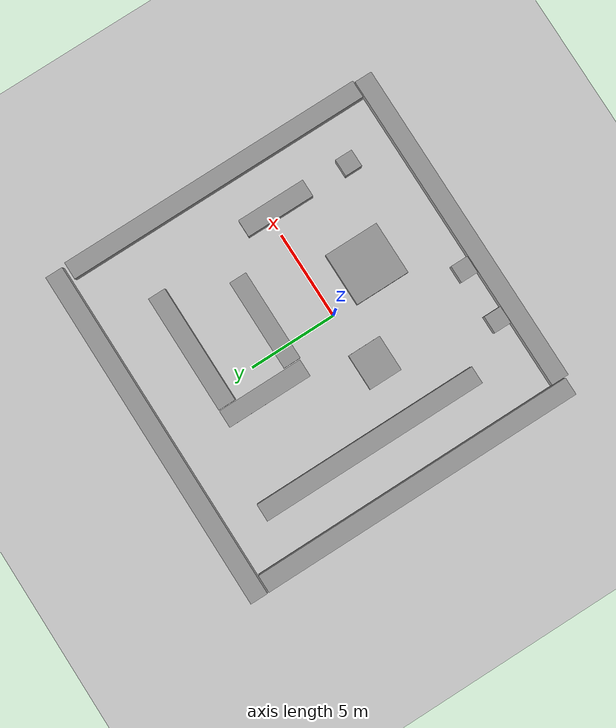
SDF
<?xml version="1.0"?>
<sdf version="1.4">
    <world name="myworld">
        <include>
            <uri>model://sun</uri>
        </include>

        <include>
            <uri>model://ground_plane</uri>
        </include>

        <model name='map2'>
            <link name='link_0'>
                <pose frame=''>-0.25053 10.9673 0 0 -0 0</pose>
                <inertial>
                    <mass>19.7589</mass>
                    <inertia>
                        <ixx>3.29316</ixx>
                        <ixy>0</ixy>
                        <ixz>0</ixz>
                        <iyy>644.497</iyy>
                        <iyz>0</iyz>
                        <izz>644.497</izz>
                    </inertia>
                    <pose frame=''>0 0 0 0 -0 0</pose>
                </inertial>
                <visual name='visual'>
                    <pose frame=''>0 0 0 0 -0 0</pose>
                    <geometry>
                        <box>
                            <size>19.7589 1 1</size>
                        </box>
                    </geometry>
                    <material>
                        <lighting>1</lighting>
                        <script>
                            <uri>file://media/materials/scripts/gazebo.material</uri>
                            <name>Gazebo/Grey</name>
                        </script>
                        <ambient>0.3 0.3 0.3 1</ambient>
                        <diffuse>0.7 0.7 0.7 1</diffuse>
                        <specular>0.01 0.01 0.01 1</specular>
                        <emissive>0 0 0 1</emissive>
                    </material>
                    <cast_shadows>1</cast_shadows>
                    <transparency>0</transparency>
                </visual>
                <collision name='collision'>
                    <laser_retro>0</laser_retro>
                    <max_contacts>10</max_contacts>
                    <pose frame=''>0 0 0 0 -0 0</pose>
                    <geometry>
                        <box>
                            <size>19.7589 1 1</size>
                        </box>
                    </geometry>
                    <surface>
                        <friction>
                            <ode>
                                <mu>1</mu>
                                <mu2>1</mu2>
                                <fdir1>0 0 0</fdir1>
                                <slip1>0</slip1>
                                <slip2>0</slip2>
                            </ode>
                            <torsional>
                                <coefficient>1</coefficient>
                                <patch_radius>0</patch_radius>
                                <surface_radius>0</surface_radius>
                                <use_patch_radius>1</use_patch_radius>
                                <ode>
                                    <slip>0</slip>
                                </ode>
                            </torsional>
                        </friction>
                        <bounce>
                            <restitution_coefficient>0</restitution_coefficient>
                            <threshold>1e+06</threshold>
                        </bounce>
                        <contact>
                            <collide_without_contact>0</collide_without_contact>
                            <collide_without_contact_bitmask>1</collide_without_contact_bitmask>
                            <collide_bitmask>1</collide_bitmask>
                            <ode>
                                <soft_cfm>0</soft_cfm>
                                <soft_erp>0.2</soft_erp>
                                <kp>1e+13</kp>
                                <kd>1</kd>
                                <max_vel>0.01</max_vel>
                                <min_depth>0</min_depth>
                            </ode>
                            <bullet>
                                <split_impulse>1</split_impulse>
                                <split_impulse_penetration_threshold>-0.01</split_impulse_penetration_threshold>
                                <soft_cfm>0</soft_cfm>
                                <soft_erp>0.2</soft_erp>
                                <kp>1e+13</kp>
                                <kd>1</kd>
                            </bullet>
                        </contact>
                    </surface>
                </collision>
            </link>
            <link name='link_1'>
                <pose frame=''>-9.62489 1.044 0 0 -0 0</pose>
                <inertial>
                    <mass>18.6747</mass>
                    <inertia>
                        <ixx>544.28</ixx>
                        <ixy>0</ixy>
                        <ixz>0</ixz>
                        <iyy>3.11245</iyy>
                        <iyz>0</iyz>
                        <izz>544.28</izz>
                    </inertia>
                    <pose frame=''>0 0 0 0 -0 0</pose>
                </inertial>
                <visual name='visual'>
                    <pose frame=''>0 0 0 0 -0 0</pose>
                    <geometry>
                        <box>
                            <size>1 18.6747 1</size>
                        </box>
                    </geometry>
                    <material>
                        <lighting>1</lighting>
                        <script>
                            <uri>file://media/materials/scripts/gazebo.material</uri>
                            <name>Gazebo/Grey</name>
                        </script>
                        <ambient>0.3 0.3 0.3 1</ambient>
                        <diffuse>0.7 0.7 0.7 1</diffuse>
                        <specular>0.01 0.01 0.01 1</specular>
                        <emissive>0 0 0 1</emissive>
                    </material>
                    <cast_shadows>1</cast_shadows>
                    <transparency>0</transparency>
                </visual>
                <collision name='collision'>
                    <laser_retro>0</laser_retro>
                    <max_contacts>10</max_contacts>
                    <pose frame=''>0 0 0 0 -0 0</pose>
                    <geometry>
                        <box>
                            <size>1 18.6747 1</size>
                        </box>
                    </geometry>
                    <surface>
                        <friction>
                            <ode>
                                <mu>1</mu>
                                <mu2>1</mu2>
                                <fdir1>0 0 0</fdir1>
                                <slip1>0</slip1>
                                <slip2>0</slip2>
                            </ode>
                            <torsional>
                                <coefficient>1</coefficient>
                                <patch_radius>0</patch_radius>
                                <surface_radius>0</surface_radius>
                                <use_patch_radius>1</use_patch_radius>
                                <ode>
                                    <slip>0</slip>
                                </ode>
                            </torsional>
                        </friction>
                        <bounce>
                            <restitution_coefficient>0</restitution_coefficient>
                            <threshold>1e+06</threshold>
                        </bounce>
                        <contact>
                            <collide_without_contact>0</collide_without_contact>
                            <collide_without_contact_bitmask>1</collide_without_contact_bitmask>
                            <collide_bitmask>1</collide_bitmask>
                            <ode>
                                <soft_cfm>0</soft_cfm>
                                <soft_erp>0.2</soft_erp>
                                <kp>1e+13</kp>
                                <kd>1</kd>
                                <max_vel>0.01</max_vel>
                                <min_depth>0</min_depth>
                            </ode>
                            <bullet>
                                <split_impulse>1</split_impulse>
                                <split_impulse_penetration_threshold>-0.01</split_impulse_penetration_threshold>
                                <soft_cfm>0</soft_cfm>
                                <soft_erp>0.2</soft_erp>
                                <kp>1e+13</kp>
                                <kd>1</kd>
                            </bullet>
                        </contact>
                    </surface>
                </collision>
            </link>
            <link name='link_10'>
                <pose frame=''>-3.20852 -0.471758 0 0 -0 0</pose>
                <inertial>
                    <mass>3.91723</mass>
                    <inertia>
                        <ixx>1.50745</ixx>
                        <ixy>0</ixy>
                        <ixz>0</ixz>
                        <iyy>1.71096</iyy>
                        <iyz>0</iyz>
                        <izz>2.56554</izz>
                    </inertia>
                    <pose frame=''>0 0 0 0 -0 0</pose>
                </inertial>
                <visual name='visual'>
                    <pose frame=''>0 0 0 0 -0 0</pose>
                    <geometry>
                        <box>
                            <size>2.05944 1.90208 1</size>
                        </box>
                    </geometry>
                    <material>
                        <lighting>1</lighting>
                        <script>
                            <uri>file://media/materials/scripts/gazebo.material</uri>
                            <name>Gazebo/Grey</name>
                        </script>
                        <ambient>0.3 0.3 0.3 1</ambient>
                        <diffuse>0.7 0.7 0.7 1</diffuse>
                        <specular>0.01 0.01 0.01 1</specular>
                        <emissive>0 0 0 1</emissive>
                    </material>
                    <cast_shadows>1</cast_shadows>
                    <transparency>0</transparency>
                </visual>
                <collision name='collision'>
                    <laser_retro>0</laser_retro>
                    <max_contacts>10</max_contacts>
                    <pose frame=''>0 0 0 0 -0 0</pose>
                    <geometry>
                        <box>
                            <size>2.05944 1.90208 1</size>
                        </box>
                    </geometry>
                    <surface>
                        <friction>
                            <ode>
                                <mu>1</mu>
                                <mu2>1</mu2>
                                <fdir1>0 0 0</fdir1>
                                <slip1>0</slip1>
                                <slip2>0</slip2>
                            </ode>
                            <torsional>
                                <coefficient>1</coefficient>
                                <patch_radius>0</patch_radius>
                                <surface_radius>0</surface_radius>
                                <use_patch_radius>1</use_patch_radius>
                                <ode>
                                    <slip>0</slip>
                                </ode>
                            </torsional>
                        </friction>
                        <bounce>
                            <restitution_coefficient>0</restitution_coefficient>
                            <threshold>1e+06</threshold>
                        </bounce>
                        <contact>
                            <collide_without_contact>0</collide_without_contact>
                            <collide_without_contact_bitmask>1</collide_without_contact_bitmask>
                            <collide_bitmask>1</collide_bitmask>
                            <ode>
                                <soft_cfm>0</soft_cfm>
                                <soft_erp>0.2</soft_erp>
                                <kp>1e+13</kp>
                                <kd>1</kd>
                                <max_vel>0.01</max_vel>
                                <min_depth>0</min_depth>
                            </ode>
                            <bullet>
                                <split_impulse>1</split_impulse>
                                <split_impulse_penetration_threshold>-0.01</split_impulse_penetration_threshold>
                                <soft_cfm>0</soft_cfm>
                                <soft_erp>0.2</soft_erp>
                                <kp>1e+13</kp>
                                <kd>1</kd>
                            </bullet>
                        </contact>
                    </surface>
                </collision>
            </link>
            <link name='link_11'>
                <pose frame=''>6.24399 -4.9326 0 0 -0 0</pose>
                <inertial>
                    <mass>1</mass>
                    <inertia>
                        <ixx>0.166667</ixx>
                        <ixy>0</ixy>
                        <ixz>0</ixz>
                        <iyy>0.166667</iyy>
                        <iyz>0</iyz>
                        <izz>0.166667</izz>
                    </inertia>
                </inertial>
                <visual name='visual'>
                    <pose frame=''>0 0 0 0 -0 0</pose>
                    <geometry>
                        <box>
                            <size>1 1 1</size>
                        </box>
                    </geometry>
                    <material>
                        <lighting>1</lighting>
                        <script>
                            <uri>file://media/materials/scripts/gazebo.material</uri>
                            <name>Gazebo/Grey</name>
                        </script>
                        <ambient>0.3 0.3 0.3 1</ambient>
                        <diffuse>0.7 0.7 0.7 1</diffuse>
                        <specular>0.01 0.01 0.01 1</specular>
                        <emissive>0 0 0 1</emissive>
                    </material>
                    <cast_shadows>1</cast_shadows>
                    <transparency>0</transparency>
                </visual>
                <collision name='collision'>
                    <laser_retro>0</laser_retro>
                    <max_contacts>10</max_contacts>
                    <pose frame=''>0 0 0 0 -0 0</pose>
                    <geometry>
                        <box>
                            <size>1 1 1</size>
                        </box>
                    </geometry>
                    <surface>
                        <friction>
                            <ode>
                                <mu>1</mu>
                                <mu2>1</mu2>
                                <fdir1>0 0 0</fdir1>
                                <slip1>0</slip1>
                                <slip2>0</slip2>
                            </ode>
                            <torsional>
                                <coefficient>1</coefficient>
                                <patch_radius>0</patch_radius>
                                <surface_radius>0</surface_radius>
                                <use_patch_radius>1</use_patch_radius>
                                <ode>
                                    <slip>0</slip>
                                </ode>
                            </torsional>
                        </friction>
                        <bounce>
                            <restitution_coefficient>0</restitution_coefficient>
                            <threshold>1e+06</threshold>
                        </bounce>
                        <contact>
                            <collide_without_contact>0</collide_without_contact>
                            <collide_without_contact_bitmask>1</collide_without_contact_bitmask>
                            <collide_bitmask>1</collide_bitmask>
                            <ode>
                                <soft_cfm>0</soft_cfm>
                                <soft_erp>0.2</soft_erp>
                                <kp>1e+13</kp>
                                <kd>1</kd>
                                <max_vel>0.01</max_vel>
                                <min_depth>0</min_depth>
                            </ode>
                            <bullet>
                                <split_impulse>1</split_impulse>
                                <split_impulse_penetration_threshold>-0.01</split_impulse_penetration_threshold>
                                <soft_cfm>0</soft_cfm>
                                <soft_erp>0.2</soft_erp>
                                <kp>1e+13</kp>
                                <kd>1</kd>
                            </bullet>
                        </contact>
                    </surface>
                </collision>
            </link>
            <link name='link_12'>
                <pose frame=''>-4.74803 -6.99206 0 0 -0 0</pose>
                <inertial>
                    <mass>1</mass>
                    <inertia>
                        <ixx>0.166667</ixx>
                        <ixy>0</ixy>
                        <ixz>0</ixz>
                        <iyy>0.166667</iyy>
                        <iyz>0</iyz>
                        <izz>0.166667</izz>
                    </inertia>
                </inertial>
                <visual name='visual'>
                    <pose frame=''>0 0 0 0 -0 0</pose>
                    <geometry>
                        <box>
                            <size>1 1 1</size>
                        </box>
                    </geometry>
                    <material>
                        <lighting>1</lighting>
                        <script>
                            <uri>file://media/materials/scripts/gazebo.material</uri>
                            <name>Gazebo/Grey</name>
                        </script>
                        <ambient>0.3 0.3 0.3 1</ambient>
                        <diffuse>0.7 0.7 0.7 1</diffuse>
                        <specular>0.01 0.01 0.01 1</specular>
                        <emissive>0 0 0 1</emissive>
                    </material>
                    <cast_shadows>1</cast_shadows>
                    <transparency>0</transparency>
                </visual>
                <collision name='collision'>
                    <laser_retro>0</laser_retro>
                    <max_contacts>10</max_contacts>
                    <pose frame=''>0 0 0 0 -0 0</pose>
                    <geometry>
                        <box>
                            <size>1 1 1</size>
                        </box>
                    </geometry>
                    <surface>
                        <friction>
                            <ode>
                                <mu>1</mu>
                                <mu2>1</mu2>
                                <fdir1>0 0 0</fdir1>
                                <slip1>0</slip1>
                                <slip2>0</slip2>
                            </ode>
                            <torsional>
                                <coefficient>1</coefficient>
                                <patch_radius>0</patch_radius>
                                <surface_radius>0</surface_radius>
                                <use_patch_radius>1</use_patch_radius>
                                <ode>
                                    <slip>0</slip>
                                </ode>
                            </torsional>
                        </friction>
                        <bounce>
                            <restitution_coefficient>0</restitution_coefficient>
                            <threshold>1e+06</threshold>
                        </bounce>
                        <contact>
                            <collide_without_contact>0</collide_without_contact>
                            <collide_without_contact_bitmask>1</collide_without_contact_bitmask>
                            <collide_bitmask>1</collide_bitmask>
                            <ode>
                                <soft_cfm>0</soft_cfm>
                                <soft_erp>0.2</soft_erp>
                                <kp>1e+13</kp>
                                <kd>1</kd>
                                <max_vel>0.01</max_vel>
                                <min_depth>0</min_depth>
                            </ode>
                            <bullet>
                                <split_impulse>1</split_impulse>
                                <split_impulse_penetration_threshold>-0.01</split_impulse_penetration_threshold>
                                <soft_cfm>0</soft_cfm>
                                <soft_erp>0.2</soft_erp>
                                <kp>1e+13</kp>
                                <kd>1</kd>
                            </bullet>
                        </contact>
                    </surface>
                </collision>
            </link>
            <link name='link_13'>
                <pose frame=''>-1.63961 -6.96889 0 0 -0 0</pose>
                <inertial>
                    <mass>1</mass>
                    <inertia>
                        <ixx>0.166667</ixx>
                        <ixy>0</ixy>
                        <ixz>0</ixz>
                        <iyy>0.166667</iyy>
                        <iyz>0</iyz>
                        <izz>0.166667</izz>
                    </inertia>
                </inertial>
                <visual name='visual'>
                    <pose frame=''>0 0 0 0 -0 0</pose>
                    <geometry>
                        <box>
                            <size>1 1 1</size>
                        </box>
                    </geometry>
                    <material>
                        <lighting>1</lighting>
                        <script>
                            <uri>file://media/materials/scripts/gazebo.material</uri>
                            <name>Gazebo/Grey</name>
                        </script>
                        <ambient>0.3 0.3 0.3 1</ambient>
                        <diffuse>0.7 0.7 0.7 1</diffuse>
                        <specular>0.01 0.01 0.01 1</specular>
                        <emissive>0 0 0 1</emissive>
                    </material>
                    <cast_shadows>1</cast_shadows>
                    <transparency>0</transparency>
                </visual>
                <collision name='collision'>
                    <laser_retro>0</laser_retro>
                    <max_contacts>10</max_contacts>
                    <pose frame=''>0 0 0 0 -0 0</pose>
                    <geometry>
                        <box>
                            <size>1 1 1</size>
                        </box>
                    </geometry>
                    <surface>
                        <friction>
                            <ode>
                                <mu>1</mu>
                                <mu2>1</mu2>
                                <fdir1>0 0 0</fdir1>
                                <slip1>0</slip1>
                                <slip2>0</slip2>
                            </ode>
                            <torsional>
                                <coefficient>1</coefficient>
                                <patch_radius>0</patch_radius>
                                <surface_radius>0</surface_radius>
                                <use_patch_radius>1</use_patch_radius>
                                <ode>
                                    <slip>0</slip>
                                </ode>
                            </torsional>
                        </friction>
                        <bounce>
                            <restitution_coefficient>0</restitution_coefficient>
                            <threshold>1e+06</threshold>
                        </bounce>
                        <contact>
                            <collide_without_contact>0</collide_without_contact>
                            <collide_without_contact_bitmask>1</collide_without_contact_bitmask>
                            <collide_bitmask>1</collide_bitmask>
                            <ode>
                                <soft_cfm>0</soft_cfm>
                                <soft_erp>0.2</soft_erp>
                                <kp>1e+13</kp>
                                <kd>1</kd>
                                <max_vel>0.01</max_vel>
                                <min_depth>0</min_depth>
                            </ode>
                            <bullet>
                                <split_impulse>1</split_impulse>
                                <split_impulse_penetration_threshold>-0.01</split_impulse_penetration_threshold>
                                <soft_cfm>0</soft_cfm>
                                <soft_erp>0.2</soft_erp>
                                <kp>1e+13</kp>
                                <kd>1</kd>
                            </bullet>
                        </contact>
                    </surface>
                </collision>
            </link>
            <link name='link_2'>
                <pose frame=''>0.290833 -8.01011 0 0 -0 0</pose>
                <inertial>
                    <mass>18.7193</mass>
                    <inertia>
                        <ixx>3.11989</ixx>
                        <ixy>0</ixy>
                        <ixz>0</ixz>
                        <iyy>548.186</iyy>
                        <iyz>0</iyz>
                        <izz>548.186</izz>
                    </inertia>
                    <pose frame=''>0 0 0 0 -0 0</pose>
                </inertial>
                <visual name='visual'>
                    <pose frame=''>0 0 0 0 -0 0</pose>
                    <geometry>
                        <box>
                            <size>18.7193 1 1</size>
                        </box>
                    </geometry>
                    <material>
                        <lighting>1</lighting>
                        <script>
                            <uri>file://media/materials/scripts/gazebo.material</uri>
                            <name>Gazebo/Grey</name>
                        </script>
                        <ambient>0.3 0.3 0.3 1</ambient>
                        <diffuse>0.7 0.7 0.7 1</diffuse>
                        <specular>0.01 0.01 0.01 1</specular>
                        <emissive>0 0 0 1</emissive>
                    </material>
                    <cast_shadows>1</cast_shadows>
                    <transparency>0</transparency>
                </visual>
                <collision name='collision'>
                    <laser_retro>0</laser_retro>
                    <max_contacts>10</max_contacts>
                    <pose frame=''>0 0 0 0 -0 0</pose>
                    <geometry>
                        <box>
                            <size>18.7193 1 1</size>
                        </box>
                    </geometry>
                    <surface>
                        <friction>
                            <ode>
                                <mu>1</mu>
                                <mu2>1</mu2>
                                <fdir1>0 0 0</fdir1>
                                <slip1>0</slip1>
                                <slip2>0</slip2>
                            </ode>
                            <torsional>
                                <coefficient>1</coefficient>
                                <patch_radius>0</patch_radius>
                                <surface_radius>0</surface_radius>
                                <use_patch_radius>1</use_patch_radius>
                                <ode>
                                    <slip>0</slip>
                                </ode>
                            </torsional>
                        </friction>
                        <bounce>
                            <restitution_coefficient>0</restitution_coefficient>
                            <threshold>1e+06</threshold>
                        </bounce>
                        <contact>
                            <collide_without_contact>0</collide_without_contact>
                            <collide_without_contact_bitmask>1</collide_without_contact_bitmask>
                            <collide_bitmask>1</collide_bitmask>
                            <ode>
                                <soft_cfm>0</soft_cfm>
                                <soft_erp>0.2</soft_erp>
                                <kp>1e+13</kp>
                                <kd>1</kd>
                                <max_vel>0.01</max_vel>
                                <min_depth>0</min_depth>
                            </ode>
                            <bullet>
                                <split_impulse>1</split_impulse>
                                <split_impulse_penetration_threshold>-0.01</split_impulse_penetration_threshold>
                                <soft_cfm>0</soft_cfm>
                                <soft_erp>0.2</soft_erp>
                                <kp>1e+13</kp>
                                <kd>1</kd>
                            </bullet>
                        </contact>
                    </surface>
                </collision>
            </link>
            <link name='link_3'>
                <pose frame=''>9.26376 1.39705 0 0 -0 0</pose>
                <inertial>
                    <mass>17.6849</mass>
                    <inertia>
                        <ixx>462.399</ixx>
                        <ixy>0</ixy>
                        <ixz>0</ixz>
                        <iyy>2.9475</iyy>
                        <iyz>0</iyz>
                        <izz>462.399</izz>
                    </inertia>
                    <pose frame=''>0 0 0 0 -0 0</pose>
                </inertial>
                <visual name='visual'>
                    <pose frame=''>0 0 0 0 -0 0</pose>
                    <geometry>
                        <box>
                            <size>1 17.6849 1</size>
                        </box>
                    </geometry>
                    <material>
                        <lighting>1</lighting>
                        <script>
                            <uri>file://media/materials/scripts/gazebo.material</uri>
                            <name>Gazebo/Grey</name>
                        </script>
                        <ambient>0.3 0.3 0.3 1</ambient>
                        <diffuse>0.7 0.7 0.7 1</diffuse>
                        <specular>0.01 0.01 0.01 1</specular>
                        <emissive>0 0 0 1</emissive>
                    </material>
                    <cast_shadows>1</cast_shadows>
                    <transparency>0</transparency>
                </visual>
                <collision name='collision'>
                    <laser_retro>0</laser_retro>
                    <max_contacts>10</max_contacts>
                    <pose frame=''>0 0 0 0 -0 0</pose>
                    <geometry>
                        <box>
                            <size>1 17.6849 1</size>
                        </box>
                    </geometry>
                    <surface>
                        <friction>
                            <ode>
                                <mu>1</mu>
                                <mu2>1</mu2>
                                <fdir1>0 0 0</fdir1>
                                <slip1>0</slip1>
                                <slip2>0</slip2>
                            </ode>
                            <torsional>
                                <coefficient>1</coefficient>
                                <patch_radius>0</patch_radius>
                                <surface_radius>0</surface_radius>
                                <use_patch_radius>1</use_patch_radius>
                                <ode>
                                    <slip>0</slip>
                                </ode>
                            </torsional>
                        </friction>
                        <bounce>
                            <restitution_coefficient>0</restitution_coefficient>
                            <threshold>1e+06</threshold>
                        </bounce>
                        <contact>
                            <collide_without_contact>0</collide_without_contact>
                            <collide_without_contact_bitmask>1</collide_without_contact_bitmask>
                            <collide_bitmask>1</collide_bitmask>
                            <ode>
                                <soft_cfm>0</soft_cfm>
                                <soft_erp>0.2</soft_erp>
                                <kp>1e+13</kp>
                                <kd>1</kd>
                                <max_vel>0.01</max_vel>
                                <min_depth>0</min_depth>
                            </ode>
                            <bullet>
                                <split_impulse>1</split_impulse>
                                <split_impulse_penetration_threshold>-0.01</split_impulse_penetration_threshold>
                                <soft_cfm>0</soft_cfm>
                                <soft_erp>0.2</soft_erp>
                                <kp>1e+13</kp>
                                <kd>1</kd>
                            </bullet>
                        </contact>
                    </surface>
                </collision>
            </link>
            <link name='link_4'>
                <pose frame=''>-6.55511 1.97906 0 0 -0 0</pose>
                <inertial>
                    <mass>13.0814</mass>
                    <inertia>
                        <ixx>187.634</ixx>
                        <ixy>0</ixy>
                        <ixz>0</ixz>
                        <iyy>2.18024</iyy>
                        <iyz>0</iyz>
                        <izz>187.634</izz>
                    </inertia>
                    <pose frame=''>0 0 0 0 -0 0</pose>
                </inertial>
                <visual name='visual'>
                    <pose frame=''>0 0 0 0 -0 0</pose>
                    <geometry>
                        <box>
                            <size>1 13.0814 1</size>
                        </box>
                    </geometry>
                    <material>
                        <lighting>1</lighting>
                        <script>
                            <uri>file://media/materials/scripts/gazebo.material</uri>
                            <name>Gazebo/Grey</name>
                        </script>
                        <ambient>0.3 0.3 0.3 1</ambient>
                        <diffuse>0.7 0.7 0.7 1</diffuse>
                        <specular>0.01 0.01 0.01 1</specular>
                        <emissive>0 0 0 1</emissive>
                    </material>
                    <cast_shadows>1</cast_shadows>
                    <transparency>0</transparency>
                </visual>
                <collision name='collision'>
                    <laser_retro>0</laser_retro>
                    <max_contacts>10</max_contacts>
                    <pose frame=''>0 0 0 0 -0 0</pose>
                    <geometry>
                        <box>
                            <size>1 13.0814 1</size>
                        </box>
                    </geometry>
                    <surface>
                        <friction>
                            <ode>
                                <mu>1</mu>
                                <mu2>1</mu2>
                                <fdir1>0 0 0</fdir1>
                                <slip1>0</slip1>
                                <slip2>0</slip2>
                            </ode>
                            <torsional>
                                <coefficient>1</coefficient>
                                <patch_radius>0</patch_radius>
                                <surface_radius>0</surface_radius>
                                <use_patch_radius>1</use_patch_radius>
                                <ode>
                                    <slip>0</slip>
                                </ode>
                            </torsional>
                        </friction>
                        <bounce>
                            <restitution_coefficient>0</restitution_coefficient>
                            <threshold>1e+06</threshold>
                        </bounce>
                        <contact>
                            <collide_without_contact>0</collide_without_contact>
                            <collide_without_contact_bitmask>1</collide_without_contact_bitmask>
                            <collide_bitmask>1</collide_bitmask>
                            <ode>
                                <soft_cfm>0</soft_cfm>
                                <soft_erp>0.2</soft_erp>
                                <kp>1e+13</kp>
                                <kd>1</kd>
                                <max_vel>0.01</max_vel>
                                <min_depth>0</min_depth>
                            </ode>
                            <bullet>
                                <split_impulse>1</split_impulse>
                                <split_impulse_penetration_threshold>-0.01</split_impulse_penetration_threshold>
                                <soft_cfm>0</soft_cfm>
                                <soft_erp>0.2</soft_erp>
                                <kp>1e+13</kp>
                                <kd>1</kd>
                            </bullet>
                        </contact>
                    </surface>
                </collision>
            </link>
            <link name='link_5'>
                <pose frame=''>1.3137 -2.8846 0 0 -0 0</pose>
                <inertial>
                    <mass>9.48212</mass>
                    <inertia>
                        <ixx>8.48294</ixx>
                        <ixy>0</ixy>
                        <ixz>0</ixz>
                        <iyy>8.08776</iyy>
                        <iyz>0</iyz>
                        <izz>14.9903</izz>
                    </inertia>
                    <pose frame=''>0 0 0 0 -0 0</pose>
                </inertial>
                <visual name='visual'>
                    <pose frame=''>0 0 0 0 -0 0</pose>
                    <geometry>
                        <box>
                            <size>3.03896 3.12016 1</size>
                        </box>
                    </geometry>
                    <material>
                        <lighting>1</lighting>
                        <script>
                            <uri>file://media/materials/scripts/gazebo.material</uri>
                            <name>Gazebo/Grey</name>
                        </script>
                        <ambient>0.3 0.3 0.3 1</ambient>
                        <diffuse>0.7 0.7 0.7 1</diffuse>
                        <specular>0.01 0.01 0.01 1</specular>
                        <emissive>0 0 0 1</emissive>
                    </material>
                    <cast_shadows>1</cast_shadows>
                    <transparency>0</transparency>
                </visual>
                <collision name='collision'>
                    <laser_retro>0</laser_retro>
                    <max_contacts>10</max_contacts>
                    <pose frame=''>0 0 0 0 -0 0</pose>
                    <geometry>
                        <box>
                            <size>3.03896 3.12016 1</size>
                        </box>
                    </geometry>
                    <surface>
                        <friction>
                            <ode>
                                <mu>1</mu>
                                <mu2>1</mu2>
                                <fdir1>0 0 0</fdir1>
                                <slip1>0</slip1>
                                <slip2>0</slip2>
                            </ode>
                            <torsional>
                                <coefficient>1</coefficient>
                                <patch_radius>0</patch_radius>
                                <surface_radius>0</surface_radius>
                                <use_patch_radius>1</use_patch_radius>
                                <ode>
                                    <slip>0</slip>
                                </ode>
                            </torsional>
                        </friction>
                        <bounce>
                            <restitution_coefficient>0</restitution_coefficient>
                            <threshold>1e+06</threshold>
                        </bounce>
                        <contact>
                            <collide_without_contact>0</collide_without_contact>
                            <collide_without_contact_bitmask>1</collide_without_contact_bitmask>
                            <collide_bitmask>1</collide_bitmask>
                            <ode>
                                <soft_cfm>0</soft_cfm>
                                <soft_erp>0.2</soft_erp>
                                <kp>1e+13</kp>
                                <kd>1</kd>
                                <max_vel>0.01</max_vel>
                                <min_depth>0</min_depth>
                            </ode>
                            <bullet>
                                <split_impulse>1</split_impulse>
                                <split_impulse_penetration_threshold>-0.01</split_impulse_penetration_threshold>
                                <soft_cfm>0</soft_cfm>
                                <soft_erp>0.2</soft_erp>
                                <kp>1e+13</kp>
                                <kd>1</kd>
                            </bullet>
                        </contact>
                    </surface>
                </collision>
            </link>
            <link name='link_6'>
                <pose frame=''>2.44812 7.08908 0 0 -0 0</pose>
                <inertial>
                    <mass>6.79261</mass>
                    <inertia>
                        <ixx>1.1321</ixx>
                        <ixy>0</ixy>
                        <ixz>0</ixz>
                        <iyy>26.6835</iyy>
                        <iyz>0</iyz>
                        <izz>26.6835</izz>
                    </inertia>
                    <pose frame=''>0 0 0 0 -0 0</pose>
                </inertial>
                <visual name='visual'>
                    <pose frame=''>0 0 0 0 -0 0</pose>
                    <geometry>
                        <box>
                            <size>6.79262 1 1</size>
                        </box>
                    </geometry>
                    <material>
                        <lighting>1</lighting>
                        <script>
                            <uri>file://media/materials/scripts/gazebo.material</uri>
                            <name>Gazebo/Grey</name>
                        </script>
                        <ambient>0.3 0.3 0.3 1</ambient>
                        <diffuse>0.7 0.7 0.7 1</diffuse>
                        <specular>0.01 0.01 0.01 1</specular>
                        <emissive>0 0 0 1</emissive>
                    </material>
                    <cast_shadows>1</cast_shadows>
                    <transparency>0</transparency>
                </visual>
                <collision name='collision'>
                    <laser_retro>0</laser_retro>
                    <max_contacts>10</max_contacts>
                    <pose frame=''>0 0 0 0 -0 0</pose>
                    <geometry>
                        <box>
                            <size>6.79262 1 1</size>
                        </box>
                    </geometry>
                    <surface>
                        <friction>
                            <ode>
                                <mu>1</mu>
                                <mu2>1</mu2>
                                <fdir1>0 0 0</fdir1>
                                <slip1>0</slip1>
                                <slip2>0</slip2>
                            </ode>
                            <torsional>
                                <coefficient>1</coefficient>
                                <patch_radius>0</patch_radius>
                                <surface_radius>0</surface_radius>
                                <use_patch_radius>1</use_patch_radius>
                                <ode>
                                    <slip>0</slip>
                                </ode>
                            </torsional>
                        </friction>
                        <bounce>
                            <restitution_coefficient>0</restitution_coefficient>
                            <threshold>1e+06</threshold>
                        </bounce>
                        <contact>
                            <collide_without_contact>0</collide_without_contact>
                            <collide_without_contact_bitmask>1</collide_without_contact_bitmask>
                            <collide_bitmask>1</collide_bitmask>
                            <ode>
                                <soft_cfm>0</soft_cfm>
                                <soft_erp>0.2</soft_erp>
                                <kp>1e+13</kp>
                                <kd>1</kd>
                                <max_vel>0.01</max_vel>
                                <min_depth>0</min_depth>
                            </ode>
                            <bullet>
                                <split_impulse>1</split_impulse>
                                <split_impulse_penetration_threshold>-0.01</split_impulse_penetration_threshold>
                                <soft_cfm>0</soft_cfm>
                                <soft_erp>0.2</soft_erp>
                                <kp>1e+13</kp>
                                <kd>1</kd>
                            </bullet>
                        </contact>
                    </surface>
                </collision>
            </link>
            <link name='link_7'>
                <pose frame=''>-1.49672 5.13623 0 0 -0 0</pose>
                <inertial>
                    <mass>4.90075</mass>
                    <inertia>
                        <ixx>10.217</ixx>
                        <ixy>0</ixy>
                        <ixz>0</ixz>
                        <iyy>0.816794</iyy>
                        <iyz>0</iyz>
                        <izz>10.217</izz>
                    </inertia>
                    <pose frame=''>0 0 0 0 -0 0</pose>
                </inertial>
                <visual name='visual'>
                    <pose frame=''>0 0 0 0 -0 0</pose>
                    <geometry>
                        <box>
                            <size>1 4.90075 1</size>
                        </box>
                    </geometry>
                    <material>
                        <lighting>1</lighting>
                        <script>
                            <uri>file://media/materials/scripts/gazebo.material</uri>
                            <name>Gazebo/Grey</name>
                        </script>
                        <ambient>0.3 0.3 0.3 1</ambient>
                        <diffuse>0.7 0.7 0.7 1</diffuse>
                        <specular>0.01 0.01 0.01 1</specular>
                        <emissive>0 0 0 1</emissive>
                    </material>
                    <cast_shadows>1</cast_shadows>
                    <transparency>0</transparency>
                </visual>
                <collision name='collision'>
                    <laser_retro>0</laser_retro>
                    <max_contacts>10</max_contacts>
                    <pose frame=''>0 0 0 0 -0 0</pose>
                    <geometry>
                        <box>
                            <size>1 4.90075 1</size>
                        </box>
                    </geometry>
                    <surface>
                        <friction>
                            <ode>
                                <mu>1</mu>
                                <mu2>1</mu2>
                                <fdir1>0 0 0</fdir1>
                                <slip1>0</slip1>
                                <slip2>0</slip2>
                            </ode>
                            <torsional>
                                <coefficient>1</coefficient>
                                <patch_radius>0</patch_radius>
                                <surface_radius>0</surface_radius>
                                <use_patch_radius>1</use_patch_radius>
                                <ode>
                                    <slip>0</slip>
                                </ode>
                            </torsional>
                        </friction>
                        <bounce>
                            <restitution_coefficient>0</restitution_coefficient>
                            <threshold>1e+06</threshold>
                        </bounce>
                        <contact>
                            <collide_without_contact>0</collide_without_contact>
                            <collide_without_contact_bitmask>1</collide_without_contact_bitmask>
                            <collide_bitmask>1</collide_bitmask>
                            <ode>
                                <soft_cfm>0</soft_cfm>
                                <soft_erp>0.2</soft_erp>
                                <kp>1e+13</kp>
                                <kd>1</kd>
                                <max_vel>0.01</max_vel>
                                <min_depth>0</min_depth>
                            </ode>
                            <bullet>
                                <split_impulse>1</split_impulse>
                                <split_impulse_penetration_threshold>-0.01</split_impulse_penetration_threshold>
                                <soft_cfm>0</soft_cfm>
                                <soft_erp>0.2</soft_erp>
                                <kp>1e+13</kp>
                                <kd>1</kd>
                            </bullet>
                        </contact>
                    </surface>
                </collision>
            </link>
            <link name='link_8'>
                <pose frame=''>1.67842 3.11901 0 0 -0 0</pose>
                <inertial>
                    <mass>5.22512</mass>
                    <inertia>
                        <ixx>0.870856</ixx>
                        <ixy>0</ixy>
                        <ixz>0</ixz>
                        <iyy>12.3234</iyy>
                        <iyz>0</iyz>
                        <izz>12.3234</izz>
                    </inertia>
                    <pose frame=''>0 0 0 0 -0 0</pose>
                </inertial>
                <visual name='visual'>
                    <pose frame=''>0 0 0 0 -0 0</pose>
                    <geometry>
                        <box>
                            <size>5.22513 1 1</size>
                        </box>
                    </geometry>
                    <material>
                        <lighting>1</lighting>
                        <script>
                            <uri>file://media/materials/scripts/gazebo.material</uri>
                            <name>Gazebo/Grey</name>
                        </script>
                        <ambient>0.3 0.3 0.3 1</ambient>
                        <diffuse>0.7 0.7 0.7 1</diffuse>
                        <specular>0.01 0.01 0.01 1</specular>
                        <emissive>0 0 0 1</emissive>
                    </material>
                    <cast_shadows>1</cast_shadows>
                    <transparency>0</transparency>
                </visual>
                <collision name='collision'>
                    <laser_retro>0</laser_retro>
                    <max_contacts>10</max_contacts>
                    <pose frame=''>0 0 0 0 -0 0</pose>
                    <geometry>
                        <box>
                            <size>5.22513 1 1</size>
                        </box>
                    </geometry>
                    <surface>
                        <friction>
                            <ode>
                                <mu>1</mu>
                                <mu2>1</mu2>
                                <fdir1>0 0 0</fdir1>
                                <slip1>0</slip1>
                                <slip2>0</slip2>
                            </ode>
                            <torsional>
                                <coefficient>1</coefficient>
                                <patch_radius>0</patch_radius>
                                <surface_radius>0</surface_radius>
                                <use_patch_radius>1</use_patch_radius>
                                <ode>
                                    <slip>0</slip>
                                </ode>
                            </torsional>
                        </friction>
                        <bounce>
                            <restitution_coefficient>0</restitution_coefficient>
                            <threshold>1e+06</threshold>
                        </bounce>
                        <contact>
                            <collide_without_contact>0</collide_without_contact>
                            <collide_without_contact_bitmask>1</collide_without_contact_bitmask>
                            <collide_bitmask>1</collide_bitmask>
                            <ode>
                                <soft_cfm>0</soft_cfm>
                                <soft_erp>0.2</soft_erp>
                                <kp>1e+13</kp>
                                <kd>1</kd>
                                <max_vel>0.01</max_vel>
                                <min_depth>0</min_depth>
                            </ode>
                            <bullet>
                                <split_impulse>1</split_impulse>
                                <split_impulse_penetration_threshold>-0.01</split_impulse_penetration_threshold>
                                <soft_cfm>0</soft_cfm>
                                <soft_erp>0.2</soft_erp>
                                <kp>1e+13</kp>
                                <kd>1</kd>
                            </bullet>
                        </contact>
                    </surface>
                </collision>
            </link>
            <link name='link_9'>
                <pose frame=''>6.28458 -0.471758 0 0 -0 0</pose>
                <inertial>
                    <mass>3.94864</mass>
                    <inertia>
                        <ixx>5.45957</ixx>
                        <ixy>0</ixy>
                        <ixz>0</ixz>
                        <iyy>0.658107</iyy>
                        <iyz>0</iyz>
                        <izz>5.45957</izz>
                    </inertia>
                    <pose frame=''>0 0 0 0 -0 0</pose>
                </inertial>
                <visual name='visual'>
                    <pose frame=''>0 0 0 0 -0 0</pose>
                    <geometry>
                        <box>
                            <size>1 3.94863 1</size>
                        </box>
                    </geometry>
                    <material>
                        <lighting>1</lighting>
                        <script>
                            <uri>file://media/materials/scripts/gazebo.material</uri>
                            <name>Gazebo/Grey</name>
                        </script>
                        <ambient>0.3 0.3 0.3 1</ambient>
                        <diffuse>0.7 0.7 0.7 1</diffuse>
                        <specular>0.01 0.01 0.01 1</specular>
                        <emissive>0 0 0 1</emissive>
                    </material>
                    <cast_shadows>1</cast_shadows>
                    <transparency>0</transparency>
                </visual>
                <collision name='collision'>
                    <laser_retro>0</laser_retro>
                    <max_contacts>10</max_contacts>
                    <pose frame=''>0 0 0 0 -0 0</pose>
                    <geometry>
                        <box>
                            <size>1 3.94863 1</size>
                        </box>
                    </geometry>
                    <surface>
                        <friction>
                            <ode>
                                <mu>1</mu>
                                <mu2>1</mu2>
                                <fdir1>0 0 0</fdir1>
                                <slip1>0</slip1>
                                <slip2>0</slip2>
                            </ode>
                            <torsional>
                                <coefficient>1</coefficient>
                                <patch_radius>0</patch_radius>
                                <surface_radius>0</surface_radius>
                                <use_patch_radius>1</use_patch_radius>
                                <ode>
                                    <slip>0</slip>
                                </ode>
                            </torsional>
                        </friction>
                        <bounce>
                            <restitution_coefficient>0</restitution_coefficient>
                            <threshold>1e+06</threshold>
                        </bounce>
                        <contact>
                            <collide_without_contact>0</collide_without_contact>
                            <collide_without_contact_bitmask>1</collide_without_contact_bitmask>
                            <collide_bitmask>1</collide_bitmask>
                            <ode>
                                <soft_cfm>0</soft_cfm>
                                <soft_erp>0.2</soft_erp>
                                <kp>1e+13</kp>
                                <kd>1</kd>
                                <max_vel>0.01</max_vel>
                                <min_depth>0</min_depth>
                            </ode>
                            <bullet>
                                <split_impulse>1</split_impulse>
                                <split_impulse_penetration_threshold>-0.01</split_impulse_penetration_threshold>
                                <soft_cfm>0</soft_cfm>
                                <soft_erp>0.2</soft_erp>
                                <kp>1e+13</kp>
                                <kd>1</kd>
                            </bullet>
                        </contact>
                    </surface>
                </collision>
            </link>
            <static>1</static>
            <allow_auto_disable>1</allow_auto_disable>
        </model>
    </world>
</sdf>
